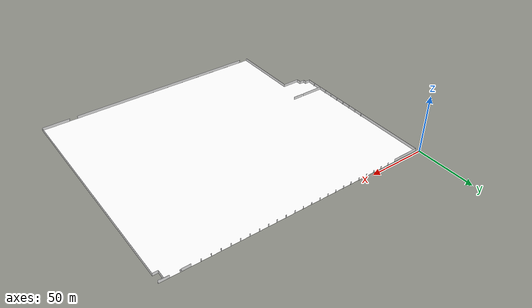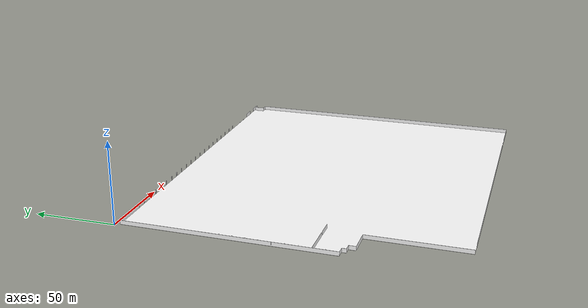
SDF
<sdf version="1.7">
  <world name="sim_world">
    <!-- Plugin for simulating physics -->
    <plugin
      filename="gz-sim-physics-system"
      name="gz::sim::systems::Physics">
    </plugin>

    <!-- Plugin for handling user commands -->
    <plugin
      filename="gz-sim-user-commands-system"
      name="gz::sim::systems::UserCommands">
    </plugin>

    <!-- Plugin for broadcasting scene updates -->
    <plugin
      filename="gz-sim-scene-broadcaster-system"
      name="gz::sim::systems::SceneBroadcaster">
    </plugin>

    <!-- Plugin for handling sensors like the LIDAR -->
    <plugin
      filename="gz-sim-sensors-system"
      name="gz::sim::systems::Sensors">
      <render_engine>ogre2</render_engine>
    </plugin>

    <!-- Plugin for IMU -->
    <plugin filename="gz-sim-imu-system"
      name="gz::sim::systems::Imu">
    </plugin>
    <scene>
      <ambient>1 1 1</ambient>
      <background>0.8 0.8 0.8</background>
      <grid>false</grid>
    </scene>
    <gui fullscreen="0">
      <window>
        <width>1000</width>
        <height>845</height>
        <style material_theme="Light" material_primary="DeepOrange" material_accent="LightBlue" toolbar_color_light="#f3f3f3" toolbar_text_color_light="#111111" toolbar_color_dark="#414141" toolbar_text_color_dark="#f3f3f3" plugin_toolbar_color_light="#bbdefb" plugin_toolbar_text_color_light="#111111" plugin_toolbar_color_dark="#607d8b" plugin_toolbar_text_color_dark="#eeeeee" />
        <menus>
          <drawer default="false">
          </drawer>
        </menus>
      </window>
      <plugin filename="GzScene3D" name="3D View">
        <ignition-gui>
          <title>3D View</title>
          <property type="bool" key="showTitleBar">false</property>
          <property type="string" key="state">docked</property>
        </ignition-gui>
        <engine>ogre2</engine>
        <scene>scene</scene>
        <ambient_light>0.4 0.4 0.4</ambient_light>
        <background_color>0.8 0.8 0.8</background_color>
        <camera_pose>120.23749999999998 -129.67499999999998 10 0 0.6 1.57</camera_pose>
      </plugin>
      <plugin filename="WorldControl" name="World control">
        <ignition-gui>
          <title>World control</title>
          <property type="bool" key="showTitleBar">false</property>
          <property type="bool" key="resizable">false</property>
          <property type="double" key="height">72</property>
          <property type="double" key="width">121</property>
          <property type="double" key="z">1</property>
          <property type="string" key="state">floating</property>
          <anchors target="3D View">
            <line own="left" target="left" />
            <line own="bottom" target="bottom" />
          </anchors>
        </ignition-gui>
        <play_pause>true</play_pause>
        <step>true</step>
        <start_paused>true</start_paused>
      </plugin>
      <plugin filename="WorldStats" name="World stats">
        <ignition-gui>
          <title>World stats</title>
          <property type="bool" key="showTitleBar">false</property>
          <property type="bool" key="resizable">false</property>
          <property type="double" key="height">110</property>
          <property type="double" key="width">290</property>
          <property type="double" key="z">1</property>
          <property type="string" key="state">floating</property>
          <anchors target="3D View">
            <line own="right" target="right" />
            <line own="bottom" target="bottom" />
          </anchors>
        </ignition-gui>
        <sim_time>true</sim_time>
        <real_time>true</real_time>
        <real_time_factor>true</real_time_factor>
        <iterations>true</iterations>
      </plugin>
      <plugin filename="TransformControl" name="Transform control">
        <ignition-gui>
          <title>Transform control</title>
          <anchors target="3D View">
            <line own="left" target="left" />
            <line own="top" target="top" />
          </anchors>
          <property key="resizable" type="bool">false</property>
          <property key="width" type="double">230</property>
          <property key="height" type="double">50</property>
          <property key="state" type="string">floating</property>
          <property key="showTitleBar" type="bool">false</property>
          <property key="cardBackground" type="string">#666666</property>
        </ignition-gui>
      </plugin>
      <plugin filename="Shapes" name="Shapes">
        <ignition-gui>
          <anchors target="Transform control">
            <line own="left" target="right" />
            <line own="top" target="top" />
          </anchors>
          <property key="resizable" type="bool">false</property>
          <property key="width" type="double">200</property>
          <property key="height" type="double">50</property>
          <property key="state" type="string">floating</property>
          <property key="showTitleBar" type="bool">false</property>
          <property key="cardBackground" type="string">#666666</property>
        </ignition-gui>
      </plugin>
      <plugin filename="ComponentInspector" name="Component inspector">
        <ignition-gui>
          <property type="bool" key="showTitleBar">false</property>
          <property type="string" key="state">docked</property>
        </ignition-gui>
      </plugin>
      <plugin filename="EntityTree" name="Entity tree">
        <ignition-gui>
          <property type="bool" key="showTitleBar">false</property>
          <property type="string" key="state">docked</property>
        </ignition-gui>
      </plugin>
    </gui>
    <light type="directional" name="sun">
      <cast_shadows>true</cast_shadows>
      <pose>0 0 10 0 0 0</pose>
      <diffuse>1 1 1 1</diffuse>
      <specular>0.2 0.2 0.2 1</specular>
      <attenuation>
        <range>1000</range>
        <constant>0.09</constant>
        <linear>0.001</linear>
        <quadratic>0.001</quadratic>
      </attenuation>
      <direction>-0.5 0.1 -0.9</direction>
    </light>
    <include>
      <name>v1_L1</name>
      <uri>model://v1_L1</uri>
      <pose>0 0 0.0 0 0 0</pose>
    </include>
    <rmf_charger_waypoints name="charger_waypoints">
      <rmf_vertex name="robot1" x="5.028034405535527" y="-117.49507238795657" level="L1" />
      <rmf_vertex name="robot2" x="9.9077163206801" y="-117.29986911108219" level="L1" />
      <rmf_vertex name="robot3" x="14.933800693480457" y="-117.47067197834726" level="L1" />
      <rmf_vertex name="robot4" x="20.00863588466005" y="-117.42187115912868" level="L1" />
      <rmf_vertex name="robot5" x="24.81241652565111" y="-117.88527893834788" level="L1" />
      <rmf_vertex name="robot6" x="30.418160629190368" y="-117.90672929843473" level="L1" />
      <rmf_vertex name="robot8" x="15.985268344451594" y="-132.15911855307195" level="L1" />
      <rmf_vertex name="robot9" x="21.60946275771592" y="-131.93711482629882" level="L1" />
      <rmf_vertex name="robot10" x="27.47416120831779" y="-131.93711482629882" level="L1" />
      <rmf_vertex name="robot7" x="10.490626105977618" y="-128.32950426539634" level="L1" />
    </rmf_charger_waypoints>
  </world>
</sdf>

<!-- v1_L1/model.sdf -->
<sdf version="1.7">
  <model name="v1_L1">
    <static>true</static>
    <link name="floor_1">
      <visual name="visual">
        <geometry>
          <mesh>
            <uri>model://v1_L1/meshes/floor_1.obj</uri>
          </mesh>
        </geometry>
        <material>
          <diffuse>1.0 1.0 1.0</diffuse>
          <specular>0.1 0.1 0.1</specular>
          <pbr>
            <metal>
              <metalness>0.0</metalness>
              <albedo_map>model://v1_L1/meshes/blue_linoleum.png</albedo_map>
            </metal>
          </pbr>
          <script>
            <uri>model://v1_L1/meshes/</uri>
            <name>floor_1_Diffuse</name>
          </script>
        </material>
      </visual>
      <collision name="collision">
        <geometry>
          <mesh>
            <uri>model://v1_L1/meshes/floor_1.obj</uri>
          </mesh>
        </geometry>
        <surface>
          <contact>
            <collide_bitmask>0x01</collide_bitmask>
          </contact>
        </surface>
      </collision>
    </link>
    <link name="wall_1">
      <visual name="wall_1">
        <geometry>
          <mesh>
            <uri>model://v1_L1/meshes/wall_1.obj</uri>
          </mesh>
        </geometry>
        <transparency>0.0</transparency>
        <material>
          <diffuse>1.0 1.0 1.0</diffuse>
          <specular>0.1 0.1 0.1</specular>
          <pbr>
            <metal>
              <metalness>0.0</metalness>
              <albedo_map>model://v1_L1/meshes/default.png</albedo_map>
            </metal>
          </pbr>
          <script>
            <uri>model://v1_L1/meshes/</uri>
            <name>wall_1_Diffuse</name>
          </script>
        </material>
      </visual>
      <collision name="collision">
        <geometry>
          <mesh>
            <uri>model://v1_L1/meshes/wall_1.obj</uri>
          </mesh>
        </geometry>
        <surface>
          <contact>
            <collide_bitmask>0x01</collide_bitmask>
          </contact>
        </surface>
      </collision>
      <pose>1.9165284635822553 -196.8488052955594 0 0 0 0</pose>
    </link>
  </model>
</sdf>
